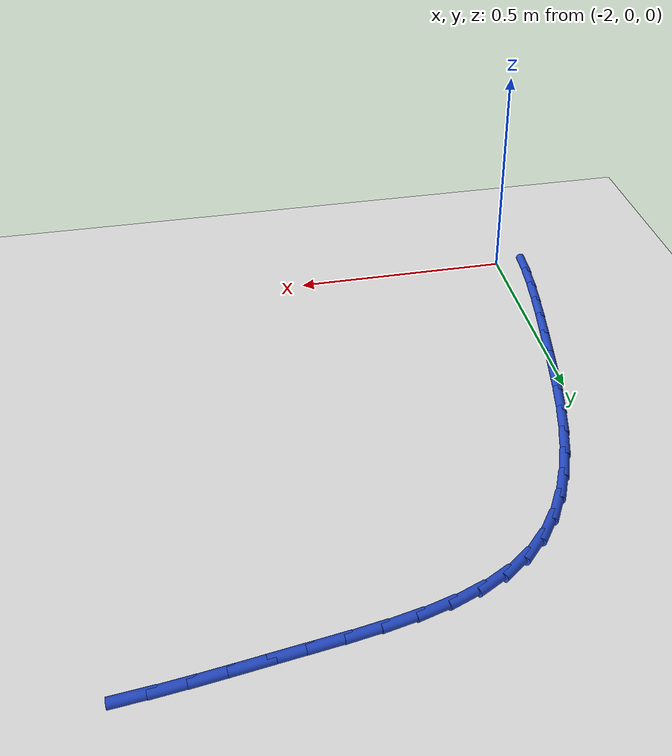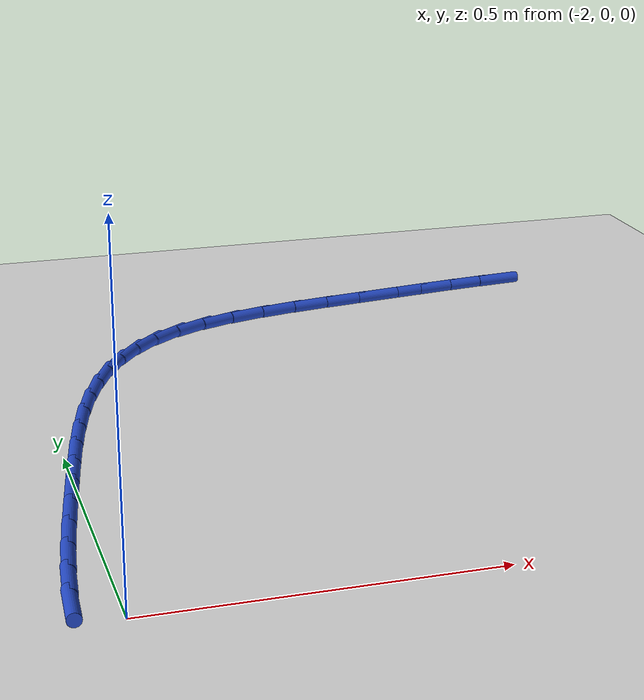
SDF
<sdf version="1.6">
 <world name="default">
  <model name="ground_plane">
   <static>1</static>
   <link name="link">
    <collision name="collision">
     <geometry><plane><normal>0 0 1</normal><size>100 100</size></plane></geometry>
     <surface><friction><ode><mu>100</mu><mu2>50</mu2></ode></friction></surface>
    </collision>
    <visual name="visual">
     <cast_shadows>0</cast_shadows>
     <geometry><plane><normal>0 0 1</normal><size>100 100</size></plane></geometry>
     <material>
      <script><uri>file://media/materials/scripts/gazebo.material</uri><name>Gazebo/WhiteGlow</name></script>
     </material>
    </visual>
   </link>
  </model>
  <model name="line">
   <link name="link_28">
    <pose>-1.07622192985038 1.1032434867757694 0.01 0 1.57 0.09376583217020876</pose>
    <collision name="collision">
     <geometry><cylinder><radius>0.01</radius><length>0.08</length></cylinder></geometry>
    </collision>
    <visual name="visual">
     <material>
      <script><name>Gazebo/Blue</name><uri>file://media/materials/scripts/gazebo.material</uri></script>
     </material>
     <geometry><cylinder><radius>0.01</radius><length>0.08</length></cylinder></geometry>
    </visual>
   </link>
   <link name="link_29">
    <pose>-1.1382096654980465 1.0974140609717167 0.01 0 1.57 0.11705257802349524</pose>
    <collision name="collision">
     <geometry><cylinder><radius>0.01</radius><length>0.08</length></cylinder></geometry>
    </collision>
    <visual name="visual">
     <material>
      <script><name>Gazebo/Blue</name><uri>file://media/materials/scripts/gazebo.material</uri></script>
     </material>
     <geometry><cylinder><radius>0.01</radius><length>0.08</length></cylinder></geometry>
    </visual>
   </link>
   <link name="link_30">
    <pose>-1.2009481608886514 1.0900366340671972 0.01 0 1.57 0.1307558130469631</pose>
    <collision name="collision">
     <geometry><cylinder><radius>0.01</radius><length>0.08</length></cylinder></geometry>
    </collision>
    <visual name="visual">
     <material>
      <script><name>Gazebo/Blue</name><uri>file://media/materials/scripts/gazebo.material</uri></script>
     </material>
     <geometry><cylinder><radius>0.01</radius><length>0.08</length></cylinder></geometry>
    </visual>
   </link>
   <link name="link_31">
    <pose>-1.2643605367862305 1.081697518190919 0.01 0 1.57 0.1353120820099958</pose>
    <collision name="collision">
     <geometry><cylinder><radius>0.01</radius><length>0.08</length></cylinder></geometry>
    </collision>
    <visual name="visual">
     <material>
      <script><name>Gazebo/Blue</name><uri>file://media/materials/scripts/gazebo.material</uri></script>
     </material>
     <geometry><cylinder><radius>0.01</radius><length>0.08</length></cylinder></geometry>
    </visual>
   </link>
   <link name="link_32">
    <pose>-1.3283699139548195 1.07298302547159 0.01 0 1.57 0.13261494497597284</pose>
    <collision name="collision">
     <geometry><cylinder><radius>0.01</radius><length>0.08</length></cylinder></geometry>
    </collision>
    <visual name="visual">
     <material>
      <script><name>Gazebo/Blue</name><uri>file://media/materials/scripts/gazebo.material</uri></script>
     </material>
     <geometry><cylinder><radius>0.01</radius><length>0.08</length></cylinder></geometry>
    </visual>
   </link>
   <link name="link_33">
    <pose>-1.3928487635888402 1.0643816840192206 0.01 0 1.57 0.13872590365858897</pose>
    <collision name="collision">
     <geometry><cylinder><radius>0.01</radius><length>0.08</length></cylinder></geometry>
    </collision>
    <visual name="visual">
     <material>
      <script><name>Gazebo/Blue</name><uri>file://media/materials/scripts/gazebo.material</uri></script>
     </material>
     <geometry><cylinder><radius>0.01</radius><length>0.08</length></cylinder></geometry>
    </visual>
   </link>
   <link name="link_34">
    <pose>-1.4571619813605465 1.0554020970455693 0.01 0 1.57 0.16326295993474674</pose>
    <collision name="collision">
     <geometry><cylinder><radius>0.01</radius><length>0.08</length></cylinder></geometry>
    </collision>
    <visual name="visual">
     <material>
      <script><name>Gazebo/Blue</name><uri>file://media/materials/scripts/gazebo.material</uri></script>
     </material>
     <geometry><cylinder><radius>0.01</radius><length>0.08</length></cylinder></geometry>
    </visual>
   </link>
   <link name="link_35">
    <pose>-1.5203818456119238 1.0449879409779763 0.01 0 1.57 0.2079443680812637</pose>
    <collision name="collision">
     <geometry><cylinder><radius>0.01</radius><length>0.08</length></cylinder></geometry>
    </collision>
    <visual name="visual">
     <material>
      <script><name>Gazebo/Blue</name><uri>file://media/materials/scripts/gazebo.material</uri></script>
     </material>
     <geometry><cylinder><radius>0.01</radius><length>0.08</length></cylinder></geometry>
    </visual>
   </link>
   <link name="link_36">
    <pose>-1.5815771088828101 1.0320760853329658 0.01 0 1.57 0.2756442562025215</pose>
    <collision name="collision">
     <geometry><cylinder><radius>0.01</radius><length>0.08</length></cylinder></geometry>
    </collision>
    <visual name="visual">
     <material>
      <script><name>Gazebo/Blue</name><uri>file://media/materials/scripts/gazebo.material</uri></script>
     </material>
     <geometry><cylinder><radius>0.01</radius><length>0.08</length></cylinder></geometry>
    </visual>
   </link>
   <link name="link_37">
    <pose>-1.639816523713043 1.0156033996270613 0.01 0 1.57 0.3702460062954448</pose>
    <collision name="collision">
     <geometry><cylinder><radius>0.01</radius><length>0.08</length></cylinder></geometry>
    </collision>
    <visual name="visual">
     <material>
      <script><name>Gazebo/Blue</name><uri>file://media/materials/scripts/gazebo.material</uri></script>
     </material>
     <geometry><cylinder><radius>0.01</radius><length>0.08</length></cylinder></geometry>
    </visual>
   </link>
   <link name="link_38">
    <pose>-1.6941688426424606 0.9945067533767871 0.01 0 1.57 0.49568626377216246</pose>
    <collision name="collision">
     <geometry><cylinder><radius>0.01</radius><length>0.08</length></cylinder></geometry>
    </collision>
    <visual name="visual">
     <material>
      <script><name>Gazebo/Blue</name><uri>file://media/materials/scripts/gazebo.material</uri></script>
     </material>
     <geometry><cylinder><radius>0.01</radius><length>0.08</length></cylinder></geometry>
    </visual>
   </link>
   <link name="link_39">
    <pose>-1.7437028182109002 0.9677230160986671 0.01 0 1.57 0.6507496037800727</pose>
    <collision name="collision">
     <geometry><cylinder><radius>0.01</radius><length>0.08</length></cylinder></geometry>
    </collision>
    <visual name="visual">
     <material>
      <script><name>Gazebo/Blue</name><uri>file://media/materials/scripts/gazebo.material</uri></script>
     </material>
     <geometry><cylinder><radius>0.01</radius><length>0.08</length></cylinder></geometry>
    </visual>
   </link>
   <link name="link_40">
    <pose>-1.787588004404643 0.9343093671484658 0.01 0 1.57 0.8059097170545931</pose>
    <collision name="collision">
     <geometry><cylinder><radius>0.01</radius><length>0.08</length></cylinder></geometry>
    </collision>
    <visual name="visual">
     <material>
      <script><name>Gazebo/Blue</name><uri>file://media/materials/scripts/gazebo.material</uri></script>
     </material>
     <geometry><cylinder><radius>0.01</radius><length>0.08</length></cylinder></geometry>
    </visual>
   </link>
   <link name="link_41">
    <pose>-1.8258947087908968 0.8943980648846863 0.01 0 1.57 0.9415992884116896</pose>
    <collision name="collision">
     <geometry><cylinder><radius>0.01</radius><length>0.08</length></cylinder></geometry>
    </collision>
    <visual name="visual">
     <material>
      <script><name>Gazebo/Blue</name><uri>file://media/materials/scripts/gazebo.material</uri></script>
     </material>
     <geometry><cylinder><radius>0.01</radius><length>0.08</length></cylinder></geometry>
    </visual>
   </link>
   <link name="link_42">
    <pose>-1.8591671439568724 0.8486869888824258 0.01 0 1.57 1.0553150975640493</pose>
    <collision name="collision">
     <geometry><cylinder><radius>0.01</radius><length>0.08</length></cylinder></geometry>
    </collision>
    <visual name="visual">
     <material>
      <script><name>Gazebo/Blue</name><uri>file://media/materials/scripts/gazebo.material</uri></script>
     </material>
     <geometry><cylinder><radius>0.01</radius><length>0.08</length></cylinder></geometry>
    </visual>
   </link>
   <link name="link_43">
    <pose>-1.8879537511169655 0.797879065722304 0.01 0 1.57 1.1478160044272459</pose>
    <collision name="collision">
     <geometry><cylinder><radius>0.01</radius><length>0.08</length></cylinder></geometry>
    </collision>
    <visual name="visual">
     <material>
      <script><name>Gazebo/Blue</name><uri>file://media/materials/scripts/gazebo.material</uri></script>
     </material>
     <geometry><cylinder><radius>0.01</radius><length>0.08</length></cylinder></geometry>
    </visual>
   </link>
   <link name="link_44">
    <pose>-1.9128029714855714 0.7426772219849412 0.01 0 1.57 1.2213551624468866</pose>
    <collision name="collision">
     <geometry><cylinder><radius>0.01</radius><length>0.08</length></cylinder></geometry>
    </collision>
    <visual name="visual">
     <material>
      <script><name>Gazebo/Blue</name><uri>file://media/materials/scripts/gazebo.material</uri></script>
     </material>
     <geometry><cylinder><radius>0.01</radius><length>0.08</length></cylinder></geometry>
    </visual>
   </link>
   <link name="link_45">
    <pose>-1.9342632462770848 0.6837843842509571 0.01 0 1.57 1.2785169226562663</pose>
    <collision name="collision">
     <geometry><cylinder><radius>0.01</radius><length>0.08</length></cylinder></geometry>
    </collision>
    <visual name="visual">
     <material>
      <script><name>Gazebo/Blue</name><uri>file://media/materials/scripts/gazebo.material</uri></script>
     </material>
     <geometry><cylinder><radius>0.01</radius><length>0.08</length></cylinder></geometry>
    </visual>
   </link>
   <link name="link_46">
    <pose>-1.9528830167059028 0.6219034791009717 0.01 0 1.57 1.3216242188692255</pose>
    <collision name="collision">
     <geometry><cylinder><radius>0.01</radius><length>0.08</length></cylinder></geometry>
    </collision>
    <visual name="visual">
     <material>
      <script><name>Gazebo/Blue</name><uri>file://media/materials/scripts/gazebo.material</uri></script>
     </material>
     <geometry><cylinder><radius>0.01</radius><length>0.08</length></cylinder></geometry>
    </visual>
   </link>
   <link name="link_47">
    <pose>-1.9692107239864192 0.5577374331156046 0.01 0 1.57 1.3525135161738617</pose>
    <collision name="collision">
     <geometry><cylinder><radius>0.01</radius><length>0.08</length></cylinder></geometry>
    </collision>
    <visual name="visual">
     <material>
      <script><name>Gazebo/Blue</name><uri>file://media/materials/scripts/gazebo.material</uri></script>
     </material>
     <geometry><cylinder><radius>0.01</radius><length>0.08</length></cylinder></geometry>
    </visual>
   </link>
   <link name="link_48">
    <pose>-1.9837948093330313 0.4919891728754763 0.01 0 1.57 1.3724860461345318</pose>
    <collision name="collision">
     <geometry><cylinder><radius>0.01</radius><length>0.08</length></cylinder></geometry>
    </collision>
    <visual name="visual">
     <material>
      <script><name>Gazebo/Blue</name><uri>file://media/materials/scripts/gazebo.material</uri></script>
     </material>
     <geometry><cylinder><radius>0.01</radius><length>0.08</length></cylinder></geometry>
    </visual>
   </link>
   <link name="link_49">
    <pose>-1.9971837139601336 0.4253616249612062 0.01 0 1.57 1.3823206771866643</pose>
    <collision name="collision">
     <geometry><cylinder><radius>0.01</radius><length>0.08</length></cylinder></geometry>
    </collision>
    <visual name="visual">
     <material>
      <script><name>Gazebo/Blue</name><uri>file://media/materials/scripts/gazebo.material</uri></script>
     </material>
     <geometry><cylinder><radius>0.01</radius><length>0.08</length></cylinder></geometry>
    </visual>
   </link>
   <link name="link_50">
    <pose>-2.0099258642270694 0.35855770804009185 0.01 0 1.57 1.3854691545223603</pose>
    <collision name="collision">
     <geometry><cylinder><radius>0.01</radius><length>0.08</length></cylinder></geometry>
    </collision>
    <visual name="visual">
     <material>
      <script><name>Gazebo/Blue</name><uri>file://media/materials/scripts/gazebo.material</uri></script>
     </material>
     <geometry><cylinder><radius>0.01</radius><length>0.08</length></cylinder></geometry>
    </visual>
   </link>
   <link name="link_51">
    <pose>-2.0223712618111516 0.2921746394631802 0.01 0 1.57 1.3931383756842421</pose>
    <collision name="collision">
     <geometry><cylinder><radius>0.01</radius><length>0.08</length></cylinder></geometry>
    </collision>
    <visual name="visual">
     <material>
      <script><name>Gazebo/Blue</name><uri>file://media/materials/scripts/gazebo.material</uri></script>
     </material>
     <geometry><cylinder><radius>0.01</radius><length>0.08</length></cylinder></geometry>
    </visual>
   </link>
   <link name="link_52">
    <pose>-2.0341741571473824 0.22643900818316748 0.01 0 1.57 1.4080691640718457</pose>
    <collision name="collision">
     <geometry><cylinder><radius>0.01</radius><length>0.08</length></cylinder></geometry>
    </collision>
    <visual name="visual">
     <material>
      <script><name>Gazebo/Blue</name><uri>file://media/materials/scripts/gazebo.material</uri></script>
     </material>
     <geometry><cylinder><radius>0.01</radius><length>0.08</length></cylinder></geometry>
    </visual>
   </link>
   <link name="link_53">
    <pose>-2.0448363926379267 0.16149621501872818 0.01 0 1.57 1.4307384959289822</pose>
    <collision name="collision">
     <geometry><cylinder><radius>0.01</radius><length>0.08</length></cylinder></geometry>
    </collision>
    <visual name="visual">
     <material>
      <script><name>Gazebo/Blue</name><uri>file://media/materials/scripts/gazebo.material</uri></script>
     </material>
     <geometry><cylinder><radius>0.01</radius><length>0.08</length></cylinder></geometry>
    </visual>
   </link>
   <link name="link_54">
    <pose>-2.053859810684951 0.09749166078853694 0.01 0 1.57 1.4617842002484327</pose>
    <collision name="collision">
     <geometry><cylinder><radius>0.01</radius><length>0.08</length></cylinder></geometry>
    </collision>
    <visual name="visual">
     <material>
      <script><name>Gazebo/Blue</name><uri>file://media/materials/scripts/gazebo.material</uri></script>
     </material>
     <geometry><cylinder><radius>0.01</radius><length>0.08</length></cylinder></geometry>
    </visual>
   </link>
   <link name="link_55">
    <pose>-2.060746253690619 0.03457074631126815 0.01 0 1.57 1.5019931023709254</pose>
    <collision name="collision">
     <geometry><cylinder><radius>0.01</radius><length>0.08</length></cylinder></geometry>
    </collision>
    <visual name="visual">
     <material>
      <script><name>Gazebo/Blue</name><uri>file://media/materials/scripts/gazebo.material</uri></script>
     </material>
     <geometry><cylinder><radius>0.01</radius><length>0.08</length></cylinder></geometry>
    </visual>
   </link>
  </model>
 </world>
</sdf>
